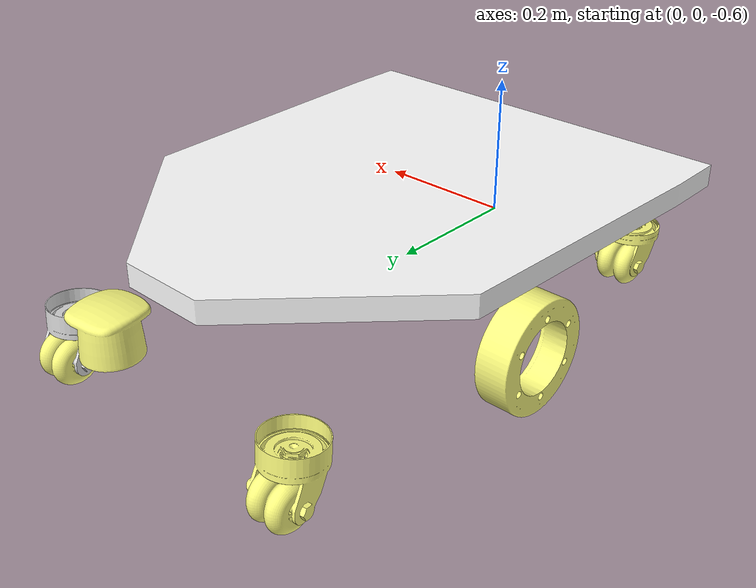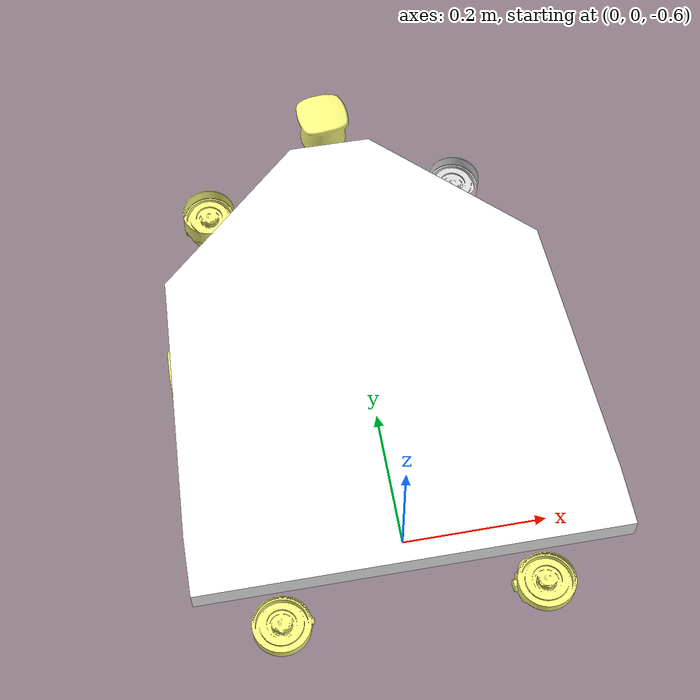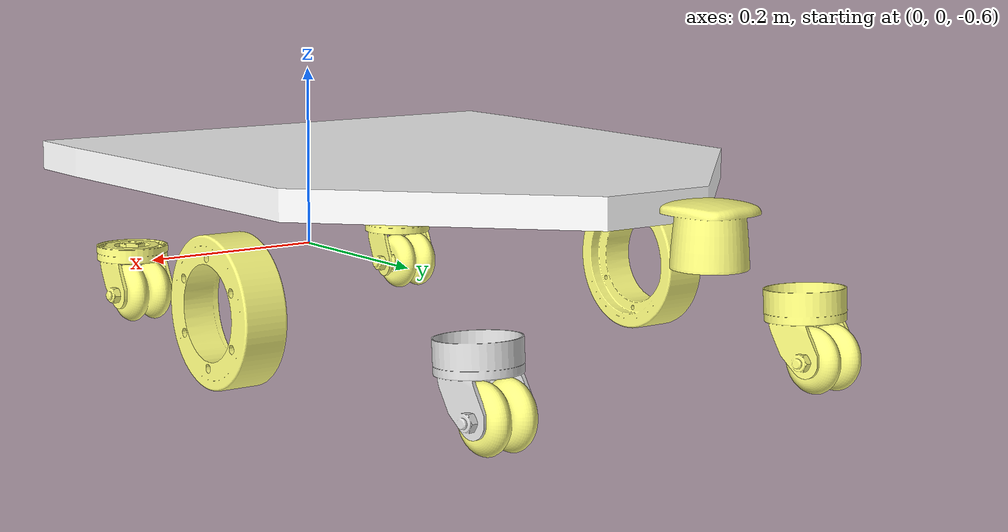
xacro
<?xml version="1.0" encoding="utf-8"?>

<robot xmlns:xacro="http://www.ros.org/wiki/xacro"
  name="sia_agv3">
  <link
    name="base_link">
    <inertial>
      <origin
        xyz="-0.000543863853506091 0.282716810863512 -0.36138635137112"
        rpy="0 0 0" />

      <mass
        value="29.2907917401275" />
      <inertia
        ixx="0.658416147229005"
        ixy="0.000444325594903029"
        ixz="-5.22965035739952E-05"
        iyy="0.481294666894637"
        iyz="0.000150147215019541"
        izz="0.989603236439599" />
    </inertial>
    <visual>
      <origin
        xyz="0 0 0"
        rpy="0 0 0" />
      <geometry>
        <mesh
          filename="package://sia_agv3/meshes/agv_base_link.dae" />
      </geometry>
      <material
        name="">
        <color
          rgba="1 1 1 1" />
      </material>
      <kinematic>1</kinematic>
    </visual>
    <collision>
      <origin
        xyz="0 0 0"
        rpy="0 0 0" />
      <geometry>
        <box size="0.5 0.5 0.5" />
      </geometry>
    </collision>
  </link>
  <link
    name="left_front">
    <inertial>
      <origin
        xyz="-0.000336543565982339 0.0067145336674802 -0.0138488838342261"
        rpy="0 0 0" />
      <mass
        value="0.0728108307863773" />
      <inertia
        ixx="2.279226907759E-05"
        ixy="-1.52431962880911E-07"
        ixz="-1.17033639983441E-07"
        iyy="2.43402166733781E-05"
        iyz="1.19958125852891E-06"
        izz="3.97943793169979E-05" />
    </inertial>
    <visual>
      <origin
        xyz="0 0 0"
        rpy="0 0 0" />
      <geometry>
        <mesh
          filename="package://sia_agv3/meshes/agv_axis2.dae" />
      </geometry>
      <material
        name="">
        <color
          rgba="1 1 0.501960784313725 1" />
      </material>
    </visual>
    <collision>
      <origin
        xyz="0 0 0"
        rpy="0 0 0" />
     <geometry>
        <cylinder radius="0.0325" length="0.016" />
      </geometry>
    </collision>
  </link>
  <joint
    name="left_front_joint"
    type="continuous">
    <origin
      xyz="-0.194 0.59539 -0.604"
      rpy="0 0 0" />
    <parent
      link="base_link" />
    <child
      link="left_front" />
    <axis
      xyz="0 0 -1" />
    <limit
      lower="-3.14"
      upper="3.14"
      effort="0"
      velocity="0" />
  </joint>
  <link
    name="left_front_wheel">
    <inertial>
      <origin
        xyz="1.54128708518275E-07 -6.35365208223604E-07 -2.08668753956531E-07"
        rpy="0 0 0" />
      <mass
        value="0.126066263473178" />
      <inertia
        ixx="3.69211700768695E-05"
        ixy="1.59275080958781E-11"
        ixz="-4.07947748521245E-10"
        iyy="3.69211197129469E-05"
        iyz="1.49202086216788E-09"
        izz="6.47847031089787E-05" />
    </inertial>
    <visual>
      <origin
        xyz="0 0 0"
        rpy="0 0 0" />
      <geometry>
        <mesh
          filename="package://sia_agv3/meshes/agv_universal_wheel.dae" />
      </geometry>
      <material
        name="">
        <color
          rgba="1 1 0.501960784313725 1" />
      </material>
    </visual>
    <collision>
      <origin
        xyz="0 0 0"
        rpy="0 0 0" />
      <geometry>
         <cylinder radius="0.0325" length="0.05136" />
      </geometry>
    </collision>
  </link>
  <joint
    name="left_front_wheel_joint"
    type="continuous">
    <origin
      xyz="-0.0028411 0.022783 -0.0425"
      rpy="1.5708 0 -1.5708" />
    <parent
      link="left_front" />
    <child
      link="left_front_wheel" />
    <axis
      xyz="0 0 -1" />
    <limit
      lower="-3.14"
      upper="3.14"
      effort="0"
      velocity="0" />
  </joint>
  <link
    name="right_front">
    <inertial>
      <origin
        xyz="-0.000336543565982339 0.0067145336674802 -0.0138488838342261"
        rpy="0 0 0" />
      <mass
        value="0.0773960442571589" />
      <inertia
        ixx="2.79271956658027E-05"
        ixy="-2.09328673275462E-07"
        ixz="-1.86296961191266E-07"
        iyy="2.93597569308493E-05"
        iyz="-2.80412358155225E-08"
        izz="4.69036460817845E-05" />
    </inertial>
    <visual>
      <origin
        xyz="0 0 0"
        rpy="0 0 0" />
      <geometry>
        <mesh
          filename="package://sia_agv3/meshes/agv_axis2.dae" />
      </geometry>
      <material
        name="">
        <color
          rgba="0.854901960784314 0.854901960784314 0.854901960784314 1" />
      </material>
    </visual>
    <collision>
      <origin
        xyz="0 0 0"
        rpy="0 0 0" />
      <geometry>
        <cylinder radius="0.0325" length="0.016" />
      </geometry>
    </collision>
  </link>
  <joint
    name="right_front_joint"
    type="continuous">
    <origin
      xyz="0.194 0.59535 -0.6046"
      rpy="0 0 0" />
    <parent
      link="base_link" />
    <child
      link="right_front" />
    <axis
      xyz="0 0 -1" />
    <limit
      lower="-3.14"
      upper="3.14"
      effort="0"
      velocity="0" />
  </joint>
  <link
    name="right_front_wheel">
    <inertial>
      <origin
        xyz="8.63289463803874E-08 -6.61745890639942E-07 2.14074135862496E-07"
        rpy="0 0 0" />
      <mass
        value="0.126066298764299" />
      <inertia
        ixx="3.69211742911089E-05"
        ixy="3.29619978086518E-12"
        ixz="1.35062822981863E-10"
        iyy="3.6921114726363E-05"
        iyz="-1.54062454753047E-09"
        izz="6.47847019668671E-05" />
    </inertial>
    <visual>
      <origin
        xyz="0 0 0"
        rpy="0 0 0" />
      <geometry>
        <mesh
          filename="package://sia_agv3/meshes/agv_universal_wheel.dae" />
      </geometry>
      <material
        name="">
        <color
          rgba="1 1 0.501960784313725 1" />
      </material>
    </visual>
    <collision>
      <origin
        xyz="0 0 0"
        rpy="0 0 0" />
      <geometry>
         <cylinder radius="0.0325" length="0.05136" />
      </geometry>
    </collision>
  </link>
  <joint
    name="right_front_wheel_joint"
    type="continuous">
    <origin
      xyz="-0.0028411 0.022783 -0.0425"
      rpy="1.5807 0.069104 -1.5708" />
    <parent
      link="right_front" />
    <child
      link="right_front_wheel" />
    <axis
      xyz="0 0 -1" />
    <limit
      lower="-3.14"
      upper="3.14"
      effort="0"
      velocity="0" />
  </joint>
  <link
    name="left_wheel">
    <inertial>
      <origin
        xyz="-6.93889390390723E-18 0 0.00168998379535312"
        rpy="0 0 0" />
      <mass
        value="0.418358558488212" />
      <inertia
        ixx="0.000915617766712358"
        ixy="3.32582077666032E-20"
        ixz="1.88985288748301E-20"
        iyy="0.000915617766712358"
        iyz="-8.76135733408917E-21"
        izz="0.00170660288564837" />
    </inertial>
    <visual>
      <origin
        xyz="0 0 0"
        rpy="0 0 0" />
      <geometry>
        <mesh
          filename="package://sia_agv3/meshes/agv_drive_wheel.dae" />
      </geometry>
      <material
        name="">
        <color
          rgba="1 1 0.501960784313725 1" />
      </material>
    </visual>
    <collision>
      <origin
        xyz="0 0 0"
        rpy="0 0 0" />
      <geometry>
         <cylinder radius="0.075" length="0.045" />
      </geometry>
    </collision>
  </link>
  <joint
    name="left_wheel_joint"
    type="continuous">
    <origin
      xyz="-0.2595 0.2765 -0.604"
      rpy="1.5708 0 -1.5708" />
    <parent
      link="base_link" />
    <child
      link="left_wheel" />
    <axis
      xyz="0 0 -1" />
    <limit
      lower="-3.14"
      upper="3.14"
      effort="0"
      velocity="0" />
  </joint>
  <link
    name="right_wheel">
    <inertial>
      <origin
        xyz="-6.93889390390723E-18 0 0.00168998379535312"
        rpy="0 0 0" />
      <mass
        value="0.418358558488212" />
      <inertia
        ixx="0.000915617766712358"
        ixy="3.32582077666032E-20"
        ixz="1.88985288748301E-20"
        iyy="0.000915617766712358"
        iyz="-8.76135733408917E-21"
        izz="0.00170660288564837" />
    </inertial>
    <visual>
      <origin
        xyz="0 0 0"
        rpy="0 0 0" />
      <geometry>
        <mesh
          filename="package://sia_agv3/meshes/agv_drive_wheel.dae" />
      </geometry>
      <material
        name="">
        <color
          rgba="1 1 0.501960784313725 1" />
      </material>
    </visual>
    <collision>
      <origin
        xyz="0 0 0"
        rpy="0 0 0" />
      <geometry>
         <cylinder radius="0.075" length="0.045" />
      </geometry>
    </collision>
  </link>
  <joint
    name="right_wheel_joint"
    type="continuous">
    <origin
      xyz="0.2595 0.27512 -0.604"

      rpy="1.5708 0 1.5708" />
      <!-- change -->
    <parent
      link="base_link" />
    <child
      link="right_wheel" />
    <axis
      xyz="0 0 -1" />
    <limit
      lower="-3.14"
      upper="3.14"
      effort="0"
      velocity="0" />
  </joint>
  <link
    name="left_rear">
    <inertial>
      <origin
        xyz="0.00103770002703207 0.00601472892484933 -0.0161440697345775"
        rpy="0 0 0" />
      <mass
        value="0.0728108309256295" />
      <inertia
        ixx="2.27892988966431E-05"
        ixy="1.36495284501299E-07"
        ixz="1.04643060411549E-07"
        iyy="2.43431854614664E-05"
        iyz="1.20072630984208E-06"
        izz="3.97943785025612E-05" />
    </inertial>
    <visual>
      <origin
        xyz="0 0 0"
        rpy="0 0 0" />
      <geometry>
        <mesh
          filename="package://sia_agv3/meshes/agv_axis5.dae" />
      </geometry>
      <material
        name="">
        <color
          rgba="1 1 0.501960784313725 1" />
      </material>
    </visual>
    <collision>
      <origin
        xyz="0 0 0"
        rpy="0 0 0" />
      <geometry>
        <cylinder radius="0.0325" length="0.016" />
      </geometry>
    </collision>
  </link>
  <joint
    name="left_rear_joint"
    type="continuous">
    <origin
      xyz="-0.18 -0.0885 -0.604"
      rpy="0 0 0" />
    <parent
      link="base_link" />
    <child
      link="left_rear" />
    <axis
      xyz="0 0 -1" />
    <limit
      lower="-3.14"
      upper="3.14"
      effort="0"
      velocity="0" />
  </joint>
  <link
    name="left_rear_wheel">
    <inertial>
      <origin
        xyz="-2.5138800996416E-07 6.19546932312254E-07 1.74490358807733E-07"
        rpy="0 0 0" />
      <mass
        value="0.126066317340043" />
      <inertia
        ixx="3.71313849029771E-05"
        ixy="-1.09124836455106E-10"
        ixz="-2.41105892440028E-06"
        iyy="3.69211204624104E-05"
        iyz="1.45526694390849E-09"
        izz="6.45744854056141E-05" />
    </inertial>
    <visual>
      <origin
        xyz="0 0 0"
        rpy="0 0 0" />
      <geometry>
        <mesh
          filename="package://sia_agv3/meshes/agv_universal_wheel.dae" />
      </geometry>
      <material
        name="">
        <color
          rgba="1 1 0.501960784313725 1" />
      </material>
    </visual>
    <collision>
      <origin
        xyz="0 0 0"
        rpy="0 0 0" />
      <geometry>
         <cylinder radius="0.0325" length="0.05136" />
      </geometry>
    </collision>
  </link>
  <joint
    name="left_rear_wheel_joint"
    type="continuous">
    <origin
      xyz="-0.00077959 0.019985 -0.0425"
      rpy="1.5708 0 -1.5708" />
    <parent
      link="left_rear" />
    <child
      link="left_rear_wheel" />
    <axis
      xyz="0 0 1" />
    <limit
      lower="-3.14"
      upper="3.14"
      effort="0"
      velocity="0" />
  </joint>
  <link
    name="right_rear">
    <inertial>
      <origin
        xyz="0.000273986900293122 0.00609743706279098 -0.0161440693104884"
        rpy="0 0 0" />
      <mass
        value="0.0728108291695974" />
      <inertia
        ixx="2.27797981840266E-05"
        ixy="-6.14434156285646E-08"
        ixz="-4.70056384567012E-08"
        iyy="2.43526875822419E-05"
        iyz="1.20436001342095E-06"
        izz="3.97943792246835E-05" />
    </inertial>
    <visual>
      <origin
        xyz="0 0 0"
        rpy="0 0 0" />
      <geometry>
        <mesh
          filename="package://sia_agv3/meshes/agv_axis6.dae" />
      </geometry>
      <material
        name="">
        <color
          rgba="1 1 0.501960784313725 1" />
      </material>
    </visual>
    <collision>
      <origin
        xyz="0 0 0"
        rpy="0 0 0" />
      <geometry>
        <cylinder radius="0.0325" length="0.016" />
      </geometry>
    </collision>
  </link>
  <joint
    name="right_rear_joint"
    type="continuous">
    <origin
      xyz="0.18 -0.0885 -0.604"
      rpy="0 0 0" />
    <parent
      link="base_link" />
    <child
      link="right_rear" />
    <axis
      xyz="0 0 -1" />
    <limit
      lower="-3.14"
      upper="3.14"
      effort="0"
      velocity="0" />
  </joint>
  <link
    name="right_rear_wheel">
    <inertial>
      <origin
        xyz="-2.30745561546897E-09 -7.89610055118573E-09 -9.54958800924999E-09"
        rpy="0 0 0" />
      <mass
        value="0.126061731217855" />
      <inertia
        ixx="3.69211695299971E-05"
        ixy="1.52621131934903E-11"
        ixz="-4.08287922080125E-10"
        iyy="3.69211191221606E-05"
        iyz="1.49225017362431E-09"
        izz="6.47847033079185E-05" />
    </inertial>
    <visual>
      <origin
        xyz="0 0 0"
        rpy="0 0 0" />
      <geometry>
        <mesh
          filename="package://sia_agv3/meshes/agv_universal_wheel.dae" />
      </geometry>
      <material
        name="">
        <color
          rgba="1 1 0.501960784313725 1" />
      </material>
    </visual>
    <collision>
      <origin
        xyz="0 0 0"
        rpy="0 0 0" />
      <geometry>
         <cylinder radius="0.0325" length="0.05136" />
      </geometry>
    </collision>
  </link>
  <joint
    name="right_rear_wheel_joint"
    type="continuous">
    <origin
      xyz="-0.00077959 0.019985 -0.0425"
      rpy="1.5708 0 -1.5708" />
    <parent
      link="right_rear" />
    <child
      link="right_rear_wheel" />
    <axis
      xyz="0 0 1" />
    <limit
      lower="-3.14"
      upper="3.14"
      effort="0"
      velocity="0" />
  </joint>
  <link
    name="laser_Link">
    <inertial>
      <origin
        xyz="6.33688978618485E-06 -5.59744645495797E-05 0.0278383378698622"
        rpy="0 0 0" />
      <mass
        value="0.216211395934109" />
      <inertia
        ixx="0.000130773887841249"
        ixy="2.26503861750725E-08"
        ixz="-3.28530461658848E-08"
        iyy="0.000130567645197807"
        iyz="2.90267159366494E-07"
        izz="0.000128913789383877" />
    </inertial>
    <visual>
      <origin
        xyz="0 0 0"
        rpy="0 0 0" />
      <geometry>
        <mesh
          filename="package://sia_agv3/meshes/agv_laser_link.dae" />
      </geometry>
      <material
        name="">
        <color
          rgba="1 1 0.501960784313725 1" />
      </material>
    </visual>
    <collision>
      <origin
        xyz="0 0 0"
        rpy="0 0 0" />
      <geometry>
        <mesh
          filename="package://sia_agv3/meshes/agv_laser_link.dae" />
      </geometry>
    </collision>
  </link>
  <joint
    name="laser_joint"
    type="continuous">
    <origin
      xyz="0 0.67006 -0.529"
      rpy="0 0 0" />
    <parent
      link="base_link" />
    <child
      link="laser_Link" />
    <axis
      xyz="0 0 -1" />
    <limit
      lower="-3.14"
      upper="3.14"
      effort="0"
      velocity="0" />
  </joint>

</robot>
